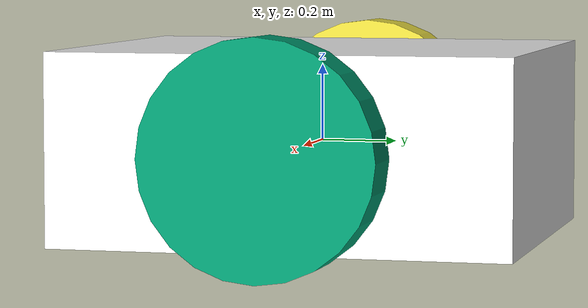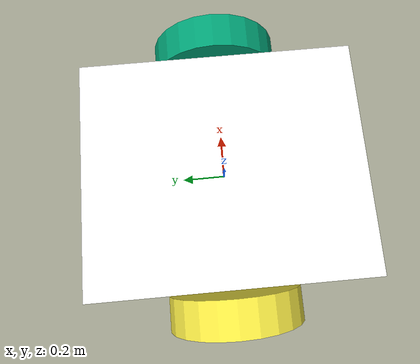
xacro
<?xml version="1.0"?>
<robot xmlns:xacro="https://www.ros.org/wiki/xacro" name="protobot">

<link name="base_link">
    <inertial>
         <mass value="3"/>
         <inertia ixx="1"  ixy="0"  ixz="0" iyy="1" iyz="0" izz="1" />
    </inertial>
    <visual>
        <origin xyz="0 0 0"/>
	<geometry>
	    <box size="1.0 1.2 0.5"/>
	</geometry>
	<material name="white"/>
    </visual>
    <collision>
	<geometry>
	    <box size="1 1.2 0.5"/>
	</geometry>
    </collision>
</link>

<link name="caster_link">
	<visual>
		<geometry>
			<cylinder length="0.15" radius="0.15"/>
		</geometry>
	</visual>
	<inertial>
           <origin xyz="0 0 0" rpy="0 0 0"/>
           <mass value="1"/>
           <inertia ixx="0.1"  ixy="0"  ixz="0" iyy="0.1" iyz="0" izz="0.1" />
    	</inertial>

</link>
<link name="left_wheel_link">
    <inertial>
         <origin xyz="0 0 0" rpy="0 0 0"/>
         <mass value="1"/>
         <inertia ixx="0.1"  ixy="0"  ixz="0" iyy="0.1" iyz="0" izz="0.1" />
    </inertial>
    <visual>
	    <geometry>
		    <cylinder length="0.15" radius="0.3"/>
	    </geometry>
    </visual>
    <collision>
	<geometry>
		    <cylinder length="0.15" radius="0.3"/>
	    </geometry>
    </collision>

</link>

<link name="right_wheel_link">
    <inertial>
         <origin xyz="0 0 0" rpy="0 0 0"/>
         <mass value="1"/>
         <inertia ixx="0.1"  ixy="0"  ixz="0" iyy="0.1" iyz="0" izz="0.1" />
    </inertial>
    <visual>
	    <geometry>
		    <cylinder length="0.15" radius="0.3"/>
	    </geometry>
    </visual>
    <collision>
	<geometry>
		    <cylinder length="0.15" radius="0.3"/>
	    </geometry>
    </collision>
</link>

<link name="gps_imu_link">
</link>

<link name="camera_link">
</link>

<link name="camera_link_optical">
</link>

<link name="ir_link">
</link>

<joint name="caster_joint" type="continuous">
	<parent link="base_link"/>
	<child link="caster_link"/>
	<axis xyz="0 0 1"/>
	<origin xyz="0 0.2 -0.1" rpy="0 1.57 0" />
</joint>

<joint name="camera_joint" type="fixed">
	<parent link="base_link"/>
	<child link="camera_link"/>
	<origin xyz="0 -0.5 0.5" rpy="3.1415 3.1415 1.571"/>
</joint>

<joint name="camera_optical_joint" type="fixed">
	<parent link="camera_link"/>
	<child link="camera_link_optical"/>
	<origin xyz="0 0 0" rpy="1.571 3.14 1.571"/>
</joint>

<joint name="ir_joint" type="fixed">
	<parent link="base_link"/>
	<child link="ir_link"/>
	<origin xyz="0 0 -0.25"/>
</joint>

<joint name="right_wheel_joint" type="continuous">
	<parent link="base_link"/>
	<child link="right_wheel_link"/>
	<origin xyz="-0.6 0.0 0" rpy="0 1.57 0"/>
	<axis xyz="0 0 1"/>
</joint>

<joint name="left_wheel_joint" type="continuous">
	<parent link = "base_link"/>
	<child link = "left_wheel_link"/>
	<origin xyz="0.6 0 0" rpy="0 1.57 0"/>
	<axis xyz="0 0 1"/>
</joint>

<joint name="gps_imu_joint" type="fixed">
	<parent link="base_link"/>
	<child link="gps_imu_link"/>
	<origin xyz="0 0 0.5"/>
</joint>

<material name="white">
	<color rgba="1 1 1 1"/>
</material>
<gazebo>
     <plugin name="imu_plugin" filename="libgazebo_ros_imu.so">
      <alwaysOn>true</alwaysOn>
      <bodyName>gps_imu_link</bodyName>
      <topicName>imu/data</topicName>
      <serviceName>imu_service</serviceName>
      <gaussianNoise>0</gaussianNoise>
      <updateRate>20.0</updateRate>
    </plugin>
</gazebo>

<gazebo>
	<plugin name="gps_controller" filename="libhector_gazebo_ros_gps.so">
		<updateRate>30.0</updateRate>
		<bodyName>gps_imu_link</bodyName>
		<topicName>gps/fix</topicName>
		<frameId>gps_imu_link</frameId>
		<gaussianNoise>0</gaussianNoise>
	</plugin>
</gazebo>

<gazebo reference="camera_link">
     <sensor type="depth" name="depth_camera">
      <plugin name="camera_link_controller" filename="libgazebo_ros_openni_kinect.so">
          <baseline>0.2</baseline>
          <alwaysOn>true</alwaysOn>
          <updateRate>1.0</updateRate>
          <cameraName>camera</cameraName>
          <imageTopicName>color/image_raw</imageTopicName>
	  <cameraInfoTopicName>color/camera_info</cameraInfoTopicName>
	  <depthImageTopicName>depth/image_raw</depthImageTopicName>
	  <depthImageInfoTopicName>depth/camera_info</depthImageInfoTopicName>
	  <pointCloudTopicName>depth/pointcloud</pointCloudTopicName>
          <frameName>camera_link_optical</frameName>
          <pointCloudCutoff>0.1</pointCloudCutoff>
	  <pointCloudCutoffMax>5</pointCloudCutoffMax>
          <distortionK1>0.00000001</distortionK1>
          <distortionK2>0.00000001</distortionK2>
          <distortionK3>0.00000001</distortionK3>
          <distortionT1>0.00000001</distortionT1>
          <distortionT2>0.00000001</distortionT2>
          <CxPrime>0</CxPrime>
          <Cx>0</Cx>
          <Cy>0</Cy>
          <focalLength>0</focalLength>
          <hackBaseline>0</hackBaseline>
      </plugin>
     </sensor>
  </gazebo>
</robot>
